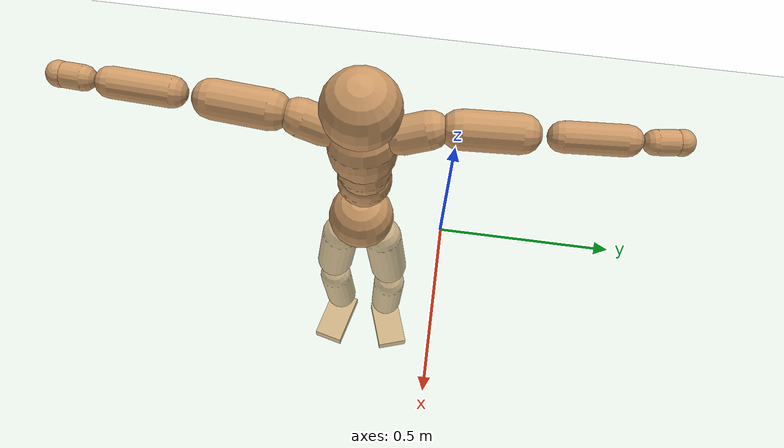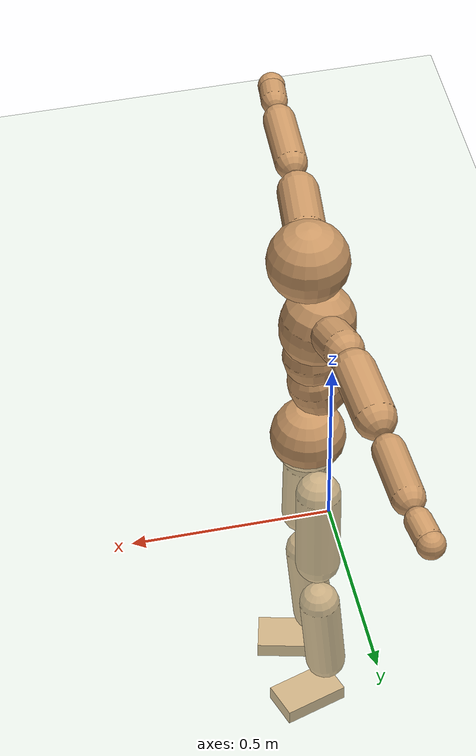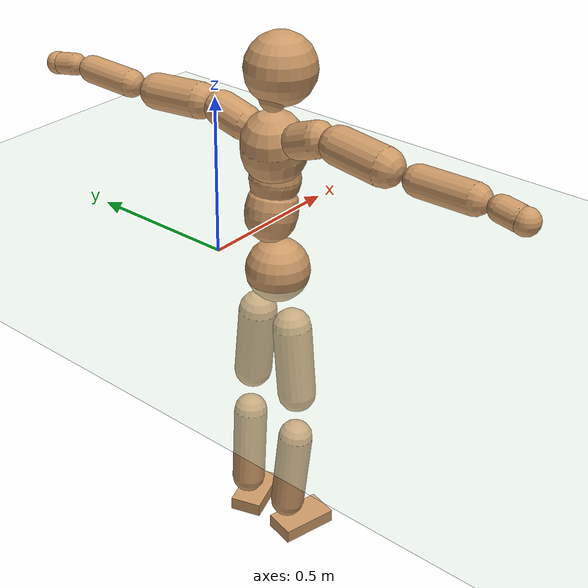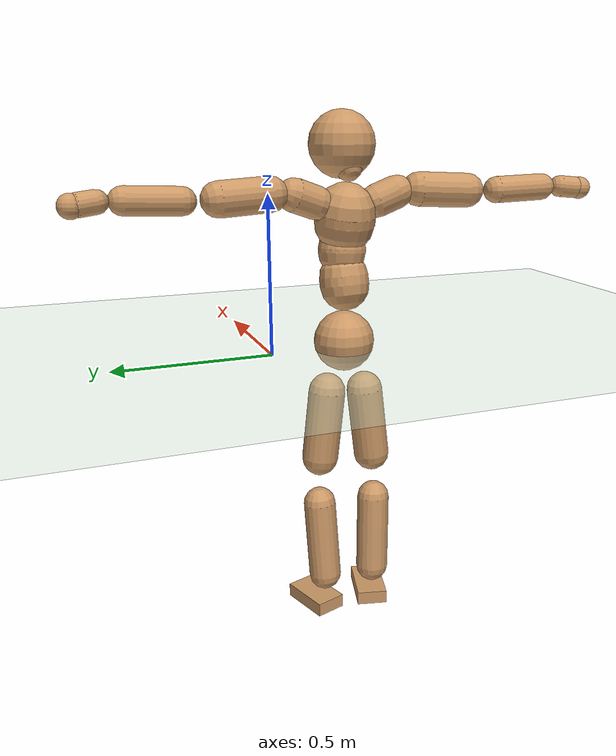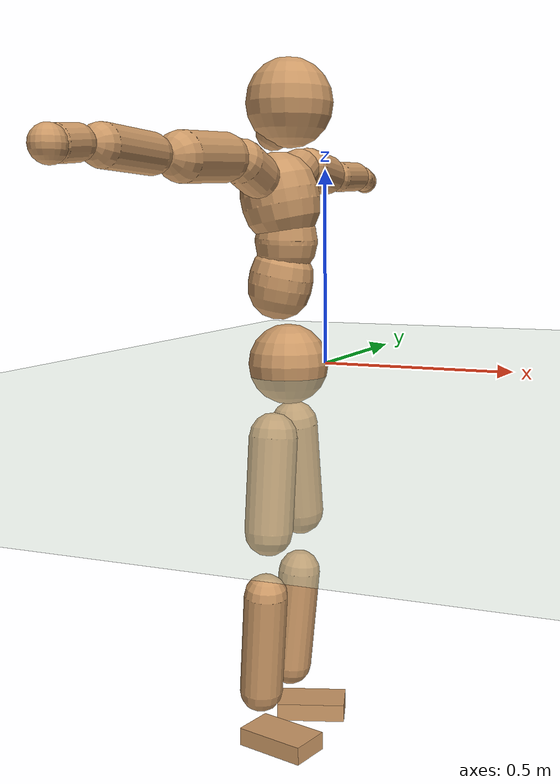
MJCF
<mujoco model="humanoid">
  <compiler coordinate="local"/>
  <default>
    <joint damping="0.0" armature="0.01" stiffness="0.0" limited="true"/>
    <geom conaffinity="1" condim="3" contype="7" margin="0.001" rgba="0.8 0.6 .4 1"/>
  </default>
  <asset>
    <texture type="skybox" builtin="gradient" rgb1=".4 .5 .6" rgb2="0 0 0" width="100" height="100"/>
    <texture builtin="flat" height="1278" mark="cross" markrgb="1 1 1" name="texgeom" random="0.01" rgb1="0.8 0.6 0.4" rgb2="0.8 0.6 0.4" type="cube" width="127"/>
    <texture builtin="checker" height="100" name="texplane" rgb1="0 0 0" rgb2="0.8 0.8 0.8" type="2d" width="100"/>
    <material name="MatPlane" reflectance="0.5" shininess="1" specular="1" texrepeat="60 60" texture="texplane"/>
    <material name="geom" texture="texgeom" texuniform="true"/>
  </asset>
  <worldbody>
    <light cutoff="100" diffuse="1 1 1" dir="-0 0 -1.3" directional="true" exponent="1" pos="0 0 1.3" specular=".1 .1 .1"/>
    <geom conaffinity="1" condim="3" name="floor" pos="0 0 0" rgba="0.8 0.9 0.8 1" size="100 100 .2" type="plane" material="MatPlane"/>
    <body name="Pelvis" pos="-0.0018 -0.2413 0.0269">
      <freejoint name="Pelvis"/>
      <geom type="sphere" contype="1" conaffinity="1" density="500" size="0.0976" pos="0.0000 0.0000 0.0000" name="Pelvis"/>
      <body name="L_Hip" pos="-0.0159 0.0566 -0.0834">
        <joint name="L_Hip_x" type="hinge" pos="0 0 0" axis="1 0 0" stiffness="800" damping="80" armature="0.02" range="-180.0000 180.0000"/>
        <joint name="L_Hip_y" type="hinge" pos="0 0 0" axis="0 1 0" stiffness="800" damping="80" armature="0.02" range="-180.0000 180.0000"/>
        <joint name="L_Hip_z" type="hinge" pos="0 0 0" axis="0 0 1" stiffness="800" damping="80" armature="0.02" range="-180.0000 180.0000"/>
        <geom type="capsule" contype="1" conaffinity="1" density="500" fromto="0.0017 0.0083 -0.0774 0.0066 0.0332 -0.3094" size="0.0593" name="L_Hip"/>
        <body name="L_Knee" pos="0.0083 0.0416 -0.3868">
          <joint name="L_Knee_x" type="hinge" pos="0 0 0" axis="1 0 0" stiffness="800" damping="80" armature="0.02" range="-180.0000 180.0000"/>
          <joint name="L_Knee_y" type="hinge" pos="0 0 0" axis="0 1 0" stiffness="800" damping="80" armature="0.02" range="-180.0000 180.0000"/>
          <joint name="L_Knee_z" type="hinge" pos="0 0 0" axis="0 0 1" stiffness="800" damping="80" armature="0.02" range="-180.0000 180.0000"/>
          <geom type="capsule" contype="1" conaffinity="1" density="500" fromto="-0.0076 -0.0030 -0.0859 -0.0302 -0.0121 -0.3434" size="0.0535" name="L_Knee"/>
          <body name="L_Ankle" pos="-0.0378 -0.0152 -0.4293">
            <joint name="L_Ankle_x" type="hinge" pos="0 0 0" axis="1 0 0" stiffness="800" damping="80" armature="0.02" range="-180.0000 180.0000"/>
            <joint name="L_Ankle_y" type="hinge" pos="0 0 0" axis="0 1 0" stiffness="800" damping="80" armature="0.02" range="-180.0000 180.0000"/>
            <joint name="L_Ankle_z" type="hinge" pos="0 0 0" axis="0 0 1" stiffness="800" damping="80" armature="0.02" range="-180.0000 180.0000"/>
            <geom type="box" contype="1" conaffinity="1" density="500" pos="0.0611 0.0200 -0.0300" size="0.0873 0.0509 0.0224" quat="0.9875 0.0000 0.0000 0.1574" name="L_Ankle"/>
            <body name="L_Toe" pos="0.1222 0.0399 -0.06">
              <joint name="L_Toe_x" type="hinge" pos="0 0 0" axis="1 0 0" stiffness="500" damping="50" armature="0.02" range="-180.0000 180.0000"/>
              <joint name="L_Toe_y" type="hinge" pos="0 0 0" axis="0 1 0" stiffness="500" damping="50" armature="0.02" range="-180.0000 180.0000"/>
              <joint name="L_Toe_z" type="hinge" pos="0 0 0" axis="0 0 1" stiffness="500" damping="50" armature="0.02" range="-180.0000 180.0000"/>
              <geom type="box" contype="1" conaffinity="1" density="500" pos="0.0000 0.0000 0.0294" size="0.0011 0.0025 0.0011" quat="0.9868 0.0000 0.0000 0.1622" name="L_Toe"/>
            </body>
          </body>
        </body>
      </body>
      <body name="R_Hip" pos="-0.0109 -0.0586 -0.0929">
        <joint name="R_Hip_x" type="hinge" pos="0 0 0" axis="1 0 0" stiffness="800" damping="80" armature="0.02" range="-180.0000 180.0000"/>
        <joint name="R_Hip_y" type="hinge" pos="0 0 0" axis="0 1 0" stiffness="800" damping="80" armature="0.02" range="-180.0000 180.0000"/>
        <joint name="R_Hip_z" type="hinge" pos="0 0 0" axis="0 0 1" stiffness="800" damping="80" armature="0.02" range="-180.0000 180.0000"/>
        <geom type="capsule" contype="1" conaffinity="1" density="500" fromto="-0.0009 -0.0086 -0.0769 -0.0035 -0.0345 -0.3075" size="0.0588" name="R_Hip"/>
        <body name="R_Knee" pos="-0.0044 -0.0431 -0.3844">
          <joint name="R_Knee_x" type="hinge" pos="0 0 0" axis="1 0 0" stiffness="800" damping="80" armature="0.02" range="-180.0000 180.0000"/>
          <joint name="R_Knee_y" type="hinge" pos="0 0 0" axis="0 1 0" stiffness="800" damping="80" armature="0.02" range="-180.0000 180.0000"/>
          <joint name="R_Knee_z" type="hinge" pos="0 0 0" axis="0 0 1" stiffness="800" damping="80" armature="0.02" range="-180.0000 180.0000"/>
          <geom type="capsule" contype="1" conaffinity="1" density="500" fromto="-0.0069 0.0039 -0.0845 -0.0276 0.0156 -0.3382" size="0.0538" name="R_Knee"/>
          <body name="R_Ankle" pos="-0.0345 0.0195 -0.4227">
            <joint name="R_Ankle_x" type="hinge" pos="0 0 0" axis="1 0 0" stiffness="800" damping="80" armature="0.02" range="-180.0000 180.0000"/>
            <joint name="R_Ankle_y" type="hinge" pos="0 0 0" axis="0 1 0" stiffness="800" damping="80" armature="0.02" range="-180.0000 180.0000"/>
            <joint name="R_Ankle_z" type="hinge" pos="0 0 0" axis="0 0 1" stiffness="800" damping="80" armature="0.02" range="-180.0000 180.0000"/>
            <geom type="box" contype="1" conaffinity="1" density="500" pos="0.0654 -0.0162 -0.0312" size="0.091 0.0503 0.0224" quat="0.9926 0.0000 0.0000 -0.1212" name="R_Ankle"/>
            <body name="R_Toe" pos="0.1307 -0.0324 -0.0624">
              <joint name="R_Toe_x" type="hinge" pos="0 0 0" axis="1 0 0" stiffness="500" damping="50" armature="0.02" range="-180.0000 180.0000"/>
              <joint name="R_Toe_y" type="hinge" pos="0 0 0" axis="0 1 0" stiffness="500" damping="50" armature="0.02" range="-180.0000 180.0000"/>
              <joint name="R_Toe_z" type="hinge" pos="0 0 0" axis="0 0 1" stiffness="500" damping="50" armature="0.02" range="-180.0000 180.0000"/>
              <geom type="box" contype="1" conaffinity="1" density="500" pos="0.0000 0.0000 0.0314" size="0.0011 0.0025 0.0011" quat="0.9937 0.0000 0.0000 -0.1124" name="R_Toe"/>
            </body>
          </body>
        </body>
      </body>
      <body name="Torso" pos="-0.0363 0.0046 0.1286">
        <joint name="Torso_x" type="hinge" pos="0 0 0" axis="1 0 0" stiffness="1000" damping="100" armature="0.02" range="-180.0000 180.0000"/>
        <joint name="Torso_y" type="hinge" pos="0 0 0" axis="0 1 0" stiffness="1000" damping="100" armature="0.02" range="-180.0000 180.0000"/>
        <joint name="Torso_z" type="hinge" pos="0 0 0" axis="0 0 1" stiffness="1000" damping="100" armature="0.02" range="-180.0000 180.0000"/>
        <geom type="capsule" contype="1" conaffinity="1" density="500" fromto="0.0171 0.0030 0.0832 0.0114 0.0020 0.0554" size="0.077655" name="Torso"/>
        <body name="Spine" pos="0.0285 0.005 0.1386">
          <joint name="Spine_x" type="hinge" pos="0 0 0" axis="1 0 0" stiffness="1000" damping="100" armature="0.02" range="-180.0000 180.0000"/>
          <joint name="Spine_y" type="hinge" pos="0 0 0" axis="0 1 0" stiffness="1000" damping="100" armature="0.02" range="-180.0000 180.0000"/>
          <joint name="Spine_z" type="hinge" pos="0 0 0" axis="0 0 1" stiffness="1000" damping="100" armature="0.02" range="-180.0000 180.0000"/>
          <geom type="capsule" contype="1" conaffinity="1" density="500" fromto="0.0018 -0.0016 0.0334 0.0012 -0.0011 0.0223" size="0.075795" name="Spine"/>
          <body name="Chest" pos="0.003 -0.0027 0.0557">
            <joint name="Chest_x" type="hinge" pos="0 0 0" axis="1 0 0" stiffness="1000" damping="100" armature="0.02" range="-180.0000 180.0000"/>
            <joint name="Chest_y" type="hinge" pos="0 0 0" axis="0 1 0" stiffness="1000" damping="100" armature="0.02" range="-180.0000 180.0000"/>
            <joint name="Chest_z" type="hinge" pos="0 0 0" axis="0 0 1" stiffness="1000" damping="100" armature="0.02" range="-180.0000 180.0000"/>
            <geom type="capsule" contype="1" conaffinity="1" density="500" fromto="-0.0169 -0.0049 0.0868 -0.0113 -0.0033 0.0579" size="0.09486" name="Chest"/>
            <body name="Neck" pos="-0.0369 -0.0133 0.2077">
              <joint name="Neck_x" type="hinge" pos="0 0 0" axis="1 0 0" stiffness="500" damping="50" armature="0.02" range="-180.0000 180.0000"/>
              <joint name="Neck_y" type="hinge" pos="0 0 0" axis="0 1 0" stiffness="500" damping="50" armature="0.02" range="-180.0000 180.0000"/>
              <joint name="Neck_z" type="hinge" pos="0 0 0" axis="0 0 1" stiffness="500" damping="50" armature="0.02" range="-180.0000 180.0000"/>
              <geom type="capsule" contype="1" conaffinity="1" density="500" fromto="0.0096 0.0018 0.0167 0.0386 0.0071 0.0668" size="0.042129" name="Neck"/>
              <body name="Head" pos="0.0482 0.0089 0.0834">
                <joint name="Head_x" type="hinge" pos="0 0 0" axis="1 0 0" stiffness="500" damping="50" armature="0.02" range="-180.0000 180.0000"/>
                <joint name="Head_y" type="hinge" pos="0 0 0" axis="0 1 0" stiffness="500" damping="50" armature="0.02" range="-180.0000 180.0000"/>
                <joint name="Head_z" type="hinge" pos="0 0 0" axis="0 0 1" stiffness="500" damping="50" armature="0.02" range="-180.0000 180.0000"/>
                <geom type="sphere" contype="1" conaffinity="1" density="500" size="0.1035" pos="0.0000 0.0000 0.0000" name="Head"/>
              </body>
            </body>
            <body name="L_Thorax" pos="-0.0225 0.0702 0.1136">
              <joint name="L_Thorax_x" type="hinge" pos="0 0 0" axis="1 0 0" stiffness="500" damping="50" armature="0.02" range="-180.0000 180.0000"/>
              <joint name="L_Thorax_y" type="hinge" pos="0 0 0" axis="0 1 0" stiffness="500" damping="50" armature="0.02" range="-180.0000 180.0000"/>
              <joint name="L_Thorax_z" type="hinge" pos="0 0 0" axis="0 0 1" stiffness="500" damping="50" armature="0.02" range="-180.0000 180.0000"/>
              <geom type="capsule" contype="1" conaffinity="1" density="500" fromto="-0.0037 0.0239 0.0086 -0.0149 0.0956 0.0345" size="0.0517" name="L_Thorax"/>
              <body name="L_Shoulder" pos="-0.0186 0.1195 0.0431">
                <joint name="L_Shoulder_x" type="hinge" pos="0 0 0" axis="1 0 0" stiffness="500" damping="50" armature="0.02" range="-720.0000 720.0000"/>
                <joint name="L_Shoulder_y" type="hinge" pos="0 0 0" axis="0 1 0" stiffness="500" damping="50" armature="0.02" range="-720.0000 720.0000"/>
                <joint name="L_Shoulder_z" type="hinge" pos="0 0 0" axis="0 0 1" stiffness="500" damping="50" armature="0.02" range="-720.0000 720.0000"/>
                <geom type="capsule" contype="1" conaffinity="1" density="500" fromto="-0.0043 0.0520 -0.0028 -0.0171 0.2079 -0.0113" size="0.0533" name="L_Shoulder"/>
                <body name="L_Elbow" pos="-0.0214 0.2598 -0.0141">
                  <joint name="L_Elbow_x" type="hinge" pos="0 0 0" axis="1 0 0" stiffness="500" damping="50" armature="0.02" range="-720.0000 720.0000"/>
                  <joint name="L_Elbow_y" type="hinge" pos="0 0 0" axis="0 1 0" stiffness="500" damping="50" armature="0.02" range="-720.0000 720.0000"/>
                  <joint name="L_Elbow_z" type="hinge" pos="0 0 0" axis="0 0 1" stiffness="500" damping="50" armature="0.02" range="-720.0000 720.0000"/>
                  <geom type="capsule" contype="1" conaffinity="1" density="500" fromto="-0.0019 0.0533 0.0022 -0.0077 0.2134 0.0089" size="0.0416" name="L_Elbow"/>
                  <body name="L_Wrist" pos="-0.0096 0.2667 0.0112">
                    <joint name="L_Wrist_x" type="hinge" pos="0 0 0" axis="1 0 0" stiffness="300" damping="30" armature="0.02" range="-180.0000 180.0000"/>
                    <joint name="L_Wrist_y" type="hinge" pos="0 0 0" axis="0 1 0" stiffness="300" damping="30" armature="0.02" range="-180.0000 180.0000"/>
                    <joint name="L_Wrist_z" type="hinge" pos="0 0 0" axis="0 0 1" stiffness="300" damping="30" armature="0.02" range="-180.0000 180.0000"/>
                    <geom type="capsule" contype="1" conaffinity="1" density="500" fromto="-0.0031 0.0172 -0.0020 -0.0124 0.0687 -0.0081" size="0.0338" name="L_Wrist"/>
                    <body name="L_Hand" pos="-0.0155 0.0858 -0.0101">
                      <joint name="L_Hand_x" type="hinge" pos="0 0 0" axis="1 0 0" stiffness="300" damping="30" armature="0.02" range="-180.0000 180.0000"/>
                      <joint name="L_Hand_y" type="hinge" pos="0 0 0" axis="0 1 0" stiffness="300" damping="30" armature="0.02" range="-180.0000 180.0000"/>
                      <joint name="L_Hand_z" type="hinge" pos="0 0 0" axis="0 0 1" stiffness="300" damping="30" armature="0.02" range="-180.0000 180.0000"/>
                      <geom type="sphere" contype="1" conaffinity="1" density="500" size="0.0352" pos="0.0000 0.0000 0.0000" name="L_Hand"/>
                    </body>
                  </body>
                </body>
              </body>
            </body>
            <body name="R_Thorax" pos="-0.025 -0.0814 0.1126">
              <joint name="R_Thorax_x" type="hinge" pos="0 0 0" axis="1 0 0" stiffness="500" damping="50" armature="0.02" range="-180.0000 180.0000"/>
              <joint name="R_Thorax_y" type="hinge" pos="0 0 0" axis="0 1 0" stiffness="500" damping="50" armature="0.02" range="-180.0000 180.0000"/>
              <joint name="R_Thorax_z" type="hinge" pos="0 0 0" axis="0 0 1" stiffness="500" damping="50" armature="0.02" range="-180.0000 180.0000"/>
              <geom type="capsule" contype="1" conaffinity="1" density="500" fromto="-0.0015 -0.0220 0.0088 -0.0061 -0.0880 0.0352" size="0.0518" name="R_Thorax"/>
              <body name="R_Shoulder" pos="-0.0077 -0.11 0.044">
                <joint name="R_Shoulder_x" type="hinge" pos="0 0 0" axis="1 0 0" stiffness="500" damping="50" armature="0.02" range="-720.0000 720.0000"/>
                <joint name="R_Shoulder_y" type="hinge" pos="0 0 0" axis="0 1 0" stiffness="500" damping="50" armature="0.02" range="-720.0000 720.0000"/>
                <joint name="R_Shoulder_z" type="hinge" pos="0 0 0" axis="0 0 1" stiffness="500" damping="50" armature="0.02" range="-720.0000 720.0000"/>
                <geom type="capsule" contype="1" conaffinity="1" density="500" fromto="-0.0057 -0.0526 -0.0025 -0.0227 -0.2103 -0.0098" size="0.0542" name="R_Shoulder"/>
                <body name="R_Elbow" pos="-0.0283 -0.2629 -0.0123">
                  <joint name="R_Elbow_x" type="hinge" pos="0 0 0" axis="1 0 0" stiffness="500" damping="50" armature="0.02" range="-720.0000 720.0000"/>
                  <joint name="R_Elbow_y" type="hinge" pos="0 0 0" axis="0 1 0" stiffness="500" damping="50" armature="0.02" range="-720.0000 720.0000"/>
                  <joint name="R_Elbow_z" type="hinge" pos="0 0 0" axis="0 0 1" stiffness="500" damping="50" armature="0.02" range="-720.0000 720.0000"/>
                  <geom type="capsule" contype="1" conaffinity="1" density="500" fromto="-0.0016 -0.0544 0.0017 -0.0065 -0.2175 0.0069" size="0.0425" name="R_Elbow"/>
                  <body name="R_Wrist" pos="-0.0081 -0.2718 0.0087">
                    <joint name="R_Wrist_x" type="hinge" pos="0 0 0" axis="1 0 0" stiffness="300" damping="30" armature="0.02" range="-180.0000 180.0000"/>
                    <joint name="R_Wrist_y" type="hinge" pos="0 0 0" axis="0 1 0" stiffness="300" damping="30" armature="0.02" range="-180.0000 180.0000"/>
                    <joint name="R_Wrist_z" type="hinge" pos="0 0 0" axis="0 0 1" stiffness="300" damping="30" armature="0.02" range="-180.0000 180.0000"/>
                    <geom type="capsule" contype="1" conaffinity="1" density="500" fromto="-0.0020 -0.0177 -0.0017 -0.0080 -0.0708 -0.0067" size="0.0347" name="R_Wrist"/>
                    <body name="R_Hand" pos="-0.01 -0.0885 -0.0084">
                      <joint name="R_Hand_x" type="hinge" pos="0 0 0" axis="1 0 0" stiffness="300" damping="30" armature="0.02" range="-180.0000 180.0000"/>
                      <joint name="R_Hand_y" type="hinge" pos="0 0 0" axis="0 1 0" stiffness="300" damping="30" armature="0.02" range="-180.0000 180.0000"/>
                      <joint name="R_Hand_z" type="hinge" pos="0 0 0" axis="0 0 1" stiffness="300" damping="30" armature="0.02" range="-180.0000 180.0000"/>
                      <geom type="sphere" contype="1" conaffinity="1" density="500" size="0.0360" pos="0.0000 0.0000 0.0000" name="R_Hand"/>
                    </body>
                  </body>
                </body>
              </body>
            </body>
          </body>
        </body>
      </body>
    </body>
  </worldbody>
  <actuator>
    <motor name="L_Hip_x" joint="L_Hip_x" gear="500"/>
    <motor name="L_Hip_y" joint="L_Hip_y" gear="500"/>
    <motor name="L_Hip_z" joint="L_Hip_z" gear="500"/>
    <motor name="L_Knee_x" joint="L_Knee_x" gear="500"/>
    <motor name="L_Knee_y" joint="L_Knee_y" gear="500"/>
    <motor name="L_Knee_z" joint="L_Knee_z" gear="500"/>
    <motor name="L_Ankle_x" joint="L_Ankle_x" gear="500"/>
    <motor name="L_Ankle_y" joint="L_Ankle_y" gear="500"/>
    <motor name="L_Ankle_z" joint="L_Ankle_z" gear="500"/>
    <motor name="L_Toe_x" joint="L_Toe_x" gear="500"/>
    <motor name="L_Toe_y" joint="L_Toe_y" gear="500"/>
    <motor name="L_Toe_z" joint="L_Toe_z" gear="500"/>
    <motor name="R_Hip_x" joint="R_Hip_x" gear="500"/>
    <motor name="R_Hip_y" joint="R_Hip_y" gear="500"/>
    <motor name="R_Hip_z" joint="R_Hip_z" gear="500"/>
    <motor name="R_Knee_x" joint="R_Knee_x" gear="500"/>
    <motor name="R_Knee_y" joint="R_Knee_y" gear="500"/>
    <motor name="R_Knee_z" joint="R_Knee_z" gear="500"/>
    <motor name="R_Ankle_x" joint="R_Ankle_x" gear="500"/>
    <motor name="R_Ankle_y" joint="R_Ankle_y" gear="500"/>
    <motor name="R_Ankle_z" joint="R_Ankle_z" gear="500"/>
    <motor name="R_Toe_x" joint="R_Toe_x" gear="500"/>
    <motor name="R_Toe_y" joint="R_Toe_y" gear="500"/>
    <motor name="R_Toe_z" joint="R_Toe_z" gear="500"/>
    <motor name="Torso_x" joint="Torso_x" gear="500"/>
    <motor name="Torso_y" joint="Torso_y" gear="500"/>
    <motor name="Torso_z" joint="Torso_z" gear="500"/>
    <motor name="Spine_x" joint="Spine_x" gear="500"/>
    <motor name="Spine_y" joint="Spine_y" gear="500"/>
    <motor name="Spine_z" joint="Spine_z" gear="500"/>
    <motor name="Chest_x" joint="Chest_x" gear="500"/>
    <motor name="Chest_y" joint="Chest_y" gear="500"/>
    <motor name="Chest_z" joint="Chest_z" gear="500"/>
    <motor name="Neck_x" joint="Neck_x" gear="500"/>
    <motor name="Neck_y" joint="Neck_y" gear="500"/>
    <motor name="Neck_z" joint="Neck_z" gear="500"/>
    <motor name="Head_x" joint="Head_x" gear="500"/>
    <motor name="Head_y" joint="Head_y" gear="500"/>
    <motor name="Head_z" joint="Head_z" gear="500"/>
    <motor name="L_Thorax_x" joint="L_Thorax_x" gear="500"/>
    <motor name="L_Thorax_y" joint="L_Thorax_y" gear="500"/>
    <motor name="L_Thorax_z" joint="L_Thorax_z" gear="500"/>
    <motor name="L_Shoulder_x" joint="L_Shoulder_x" gear="500"/>
    <motor name="L_Shoulder_y" joint="L_Shoulder_y" gear="500"/>
    <motor name="L_Shoulder_z" joint="L_Shoulder_z" gear="500"/>
    <motor name="L_Elbow_x" joint="L_Elbow_x" gear="500"/>
    <motor name="L_Elbow_y" joint="L_Elbow_y" gear="500"/>
    <motor name="L_Elbow_z" joint="L_Elbow_z" gear="500"/>
    <motor name="L_Wrist_x" joint="L_Wrist_x" gear="500"/>
    <motor name="L_Wrist_y" joint="L_Wrist_y" gear="500"/>
    <motor name="L_Wrist_z" joint="L_Wrist_z" gear="500"/>
    <motor name="L_Hand_x" joint="L_Hand_x" gear="500"/>
    <motor name="L_Hand_y" joint="L_Hand_y" gear="500"/>
    <motor name="L_Hand_z" joint="L_Hand_z" gear="500"/>
    <motor name="R_Thorax_x" joint="R_Thorax_x" gear="500"/>
    <motor name="R_Thorax_y" joint="R_Thorax_y" gear="500"/>
    <motor name="R_Thorax_z" joint="R_Thorax_z" gear="500"/>
    <motor name="R_Shoulder_x" joint="R_Shoulder_x" gear="500"/>
    <motor name="R_Shoulder_y" joint="R_Shoulder_y" gear="500"/>
    <motor name="R_Shoulder_z" joint="R_Shoulder_z" gear="500"/>
    <motor name="R_Elbow_x" joint="R_Elbow_x" gear="500"/>
    <motor name="R_Elbow_y" joint="R_Elbow_y" gear="500"/>
    <motor name="R_Elbow_z" joint="R_Elbow_z" gear="500"/>
    <motor name="R_Wrist_x" joint="R_Wrist_x" gear="500"/>
    <motor name="R_Wrist_y" joint="R_Wrist_y" gear="500"/>
    <motor name="R_Wrist_z" joint="R_Wrist_z" gear="500"/>
    <motor name="R_Hand_x" joint="R_Hand_x" gear="500"/>
    <motor name="R_Hand_y" joint="R_Hand_y" gear="500"/>
    <motor name="R_Hand_z" joint="R_Hand_z" gear="500"/>
  </actuator>
  <contact>
    <exclude body1="Torso" body2="Chest"/>
    <exclude body1="Head" body2="Chest"/>
    <exclude body1="R_Knee" body2="R_Toe"/>
    <exclude body1="R_Knee" body2="L_Ankle"/>
    <exclude body1="R_Knee" body2="L_Toe"/>
    <exclude body1="L_Knee" body2="L_Toe"/>
    <exclude body1="L_Knee" body2="R_Ankle"/>
    <exclude body1="L_Knee" body2="R_Toe"/>
    <exclude body1="L_Shoulder" body2="Chest"/>
    <exclude body1="R_Shoulder" body2="Chest"/>
  </contact>
  <sensor/>
  <size njmax="700" nconmax="700"/>
</mujoco>
